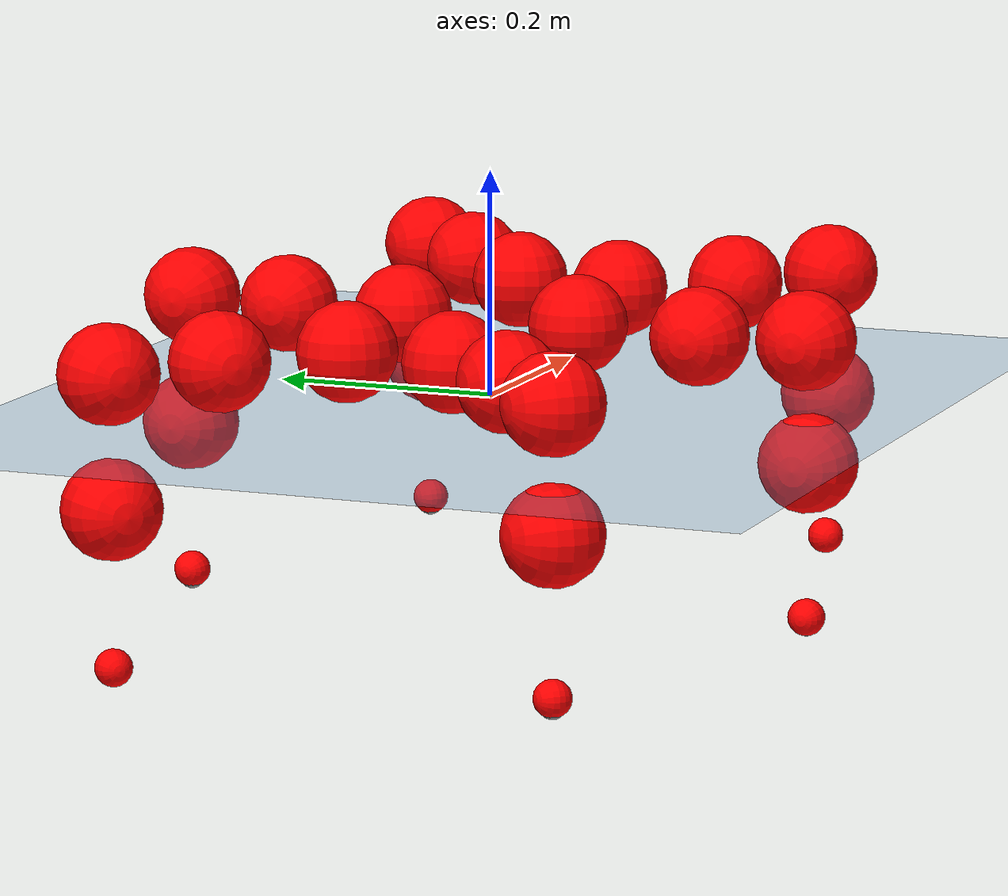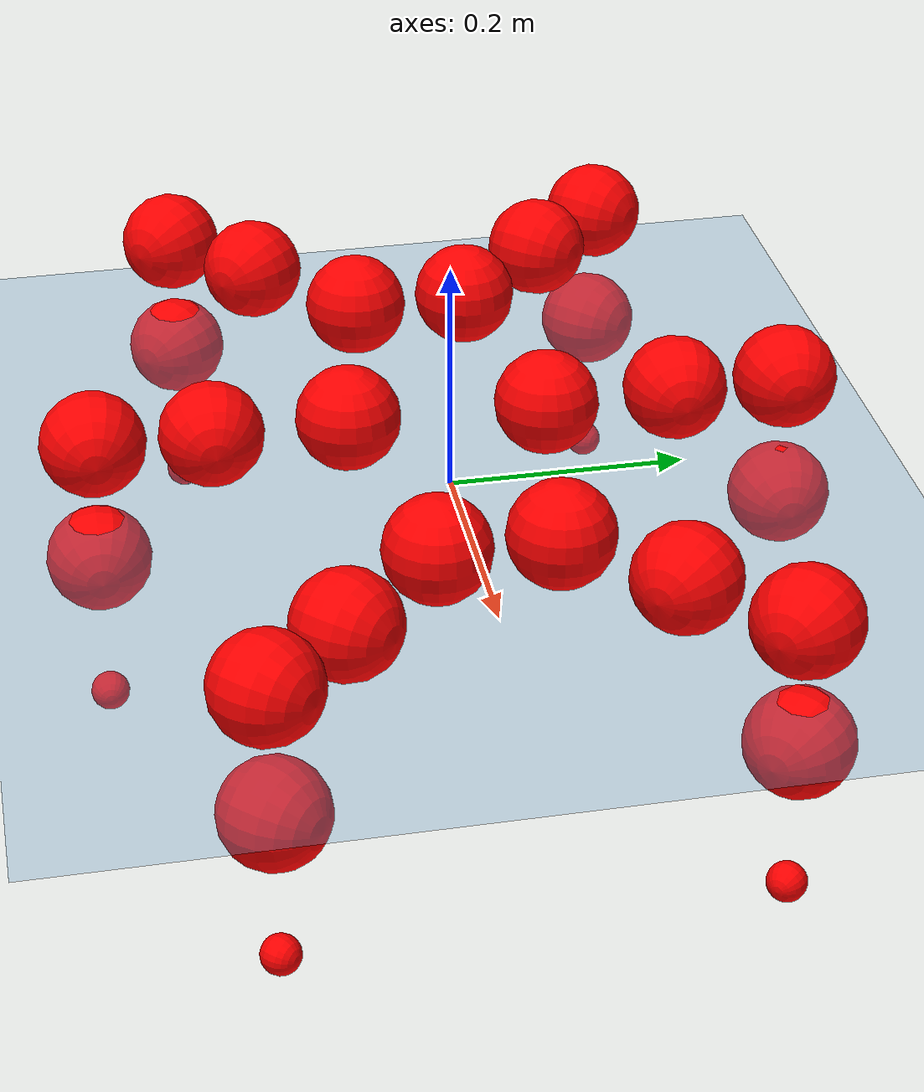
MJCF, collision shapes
<mujoco model="Golem">
  <compiler angle="radian" assetdir="assets" balanceinertia="true" inertiafromgeom="false"/>

  <option timestep="0.005" density="1.2" viscosity="2e-05"/>

  <size nkey="1"/>

  <visual>
    <quality shadowsize="8192"/>
    <map shadowclip="0.5"/>
  </visual>

  <default>
    <default class="/">
      <joint armature="0.01" damping="0.01" frictionloss="0.01"/>
      <geom contype="0" conaffinity="0" group="1" solref="-1000 -80"/>
      <site size="0.01 0.005 0.005" group="5"/>
      <general forcelimited="true" biastype="affine" gainprm="25" biasprm="0 -25 -0.5"/>
      <default class="visual">
        <geom type="mesh" group="2"/>
      </default>
      <default class="collision">
        <geom group="3"/>
      </default>
      <default class="foot">
        <geom size="0.01 0 0" condim="6" group="4" priority="1" solimp="0.015 1 0.01"/>
      </default>
      <default class="reward_collision_sphere">
        <geom group="5" rgba="1 0 0 1"/>
      </default>
    </default>
  </default>

  <asset>
    <texture type="skybox" colorspace="auto" name="//unnamed_texture_0" builtin="gradient" rgb1="0.95 0.95 0.95" rgb2="0.95 0.95 0.95" width="100" height="600"/>
    <texture type="2d" colorspace="auto" name="texplane" builtin="checker" rgb1="0.345 0.575 0.748" rgb2="0.345 0.575 0.748" markrgb="1 1 1" width="512" height="512"/>
    <material name="MatPlane" class="/" texture="texplane" texuniform="true" texrepeat="2 2" specular="0.9"/>
    <mesh name="body" class="/" file="body.stl" scale="0.001 0.001 0.001"/>
    <mesh name="coxa" class="/" file="coxa.stl" scale="0.001 0.001 0.001"/>
    <mesh name="femur" class="/" file="femur.stl" scale="0.001 0.001 0.001"/>
    <mesh name="tibia" class="/" file="tibia.stl" scale="0.001 0.001 0.001"/>
    <mesh name="tarsus" class="/" file="tarsus.stl" scale="0.001 0.001 0.001"/>
  </asset>

  <worldbody>
    <geom name="floor" class="/" size="100 100 0.125" type="plane" group="0" material="MatPlane"/>
    <light name="toplight_shadow" class="/" pos="0 0 5" dir="0.0990148 0.0990148 -0.990148" type="directional" ambient="0.04 0.04 0.04" diffuse="0.55 0.55 0.55" specular="0.12 0.12 0.12"/>
    <light name="toplight_fill" class="/" pos="0 0 5" dir="0.0990148 0.0990148 -0.990148" type="directional" castshadow="false" ambient="0.04 0.04 0.04" diffuse="0.3 0.3 0.3" specular="0.08 0.08 0.08"/>
    <body name="trunk" pos="-0.00222601 -0.000224331 -0.00129638" quat="1 7.61428e-05 1.54105e-05 0.000530578">
      <inertial pos="0.00143806 0.000266762 -0.00449404" quat="0.999907 -0.00360764 0.00993808 0.00858234" mass="4.76239" diaginertia="0.0330059 0.00627516 0.0156985"/>
      <joint name="//unnamed_joint_0" type="free"/>
      <geom name="//unnamed_geom_1" class="/" pos="0 0 0.0701916" quat="1 0 0 0" type="mesh" rgba="0.9 0.9 0.9 1" mesh="body"/>
      <site name="imu" class="/" pos="0.16976 0.000745203 0.104461" size="0.0109324"/>
      <camera name="track" class="/" pos="0 -1.82555 0" quat="0.707107 0.707107 0 0" mode="trackcom"/>
      <camera name="ego_camera" class="/" pos="0.165128 0 0.109674" quat="-0.5 -0.5 0.5 0.5"/>
      <body name="coxa_RR" pos="-0.226179 -0.0730883 0.0701341" quat="0.382582 -0.000126084 -0.000126853 -0.923922">
        <inertial pos="3.27775e-05 -1.5978e-05 -0.000334555" quat="0.99995 -0.00897167 0.00351884 0.00283327" mass="0.252839" diaginertia="0.03313 0.00610861 0.0154041"/>
        <joint name="coxa_joint_RR" class="/" pos="0 0 0" axis="0.00322537 -0.00267975 -0.999991" range="-3.15316 3.19385" armature="0.0103994" damping="0.00952388" frictionloss="0.0100444"/>
        <geom name="//unnamed_geom_2" class="/" type="mesh" rgba="0.2 0.2 0.2 1" mesh="coxa"/>
        <geom name="//unnamed_geom_3" class="reward_collision_sphere" size="0.0437298" pos="-0.0381064 0 0"/>
        <body name="femur_RR" pos="0.0754229 0.00190293 0.00288417" quat="0.500467 -0.499664 0.499881 0.499988">
          <inertial pos="-0.000461009 0.00270846 0.00248408" quat="0.999987 0.00141395 -1.98327e-05 0.00496739" mass="0.261212" diaginertia="0.0342606 0.00636121 0.0164981"/>
          <joint name="femur_joint_RR" class="/" pos="0 0 0" axis="0.000628829 0.00144733 -0.999999" range="-3.16157 3.13536" armature="0.0107918" damping="0.0175761" frictionloss="0.0122877"/>
          <geom name="//unnamed_geom_4" class="/" type="mesh" rgba="0.9 0.9 0.9 1" mesh="femur"/>
          <geom name="//unnamed_geom_5" class="reward_collision_sphere" size="0.0437298"/>
          <body name="tibia_RR" pos="0.000865218 -0.096773 -0.00229327" quat="-0.000173504 1 8.49709e-05 5.66409e-05">
            <inertial pos="0.00141013 -0.00203013 0.00089845" quat="0.999995 0.00033694 -3.23108e-05 0.00322255" mass="0.262827" diaginertia="0.0329003 0.00635593 0.0157895"/>
            <joint name="tibia_joint_RR" class="/" pos="0 0 0" axis="0.00175133 -0.000153965 0.999998" range="-3.13802 3.13557" armature="0.0104566" damping="0.020843" frictionloss="0.00985488"/>
            <geom name="//unnamed_geom_6" class="/" type="mesh" rgba="0.2 0.2 0.2 1" mesh="tibia"/>
            <geom name="//unnamed_geom_7" class="reward_collision_sphere" size="0.0437298"/>
            <body name="tarsus_RR" pos="0.108748 0.000282464 0.000198533" quat="1 0.000133997 -0.0002531 -0.000206599">
              <inertial pos="0.0746813 -0.0010276 0.000252474" quat="0.506532 0.496864 0.497224 0.49932" mass="0.269085" diaginertia="0.0341656 0.00638579 0.015637"/>
              <joint name="tarsus_joint_RR" class="/" pos="0 0 0" axis="-0.000613335 0.00155126 0.999999" range="-3.19048 3.18677" armature="0.0108183" damping="0.0072568" frictionloss="0.0112136"/>
              <geom name="//unnamed_geom_8" class="/" type="mesh" rgba="0.9 0.9 0.9 1" mesh="tarsus"/>
              <geom name="foot_1" class="foot" size="0.0118175" pos="0.142264 0 0" quat="0 -0.707107 0 0.707107"/>
              <geom name="//unnamed_geom_10" class="reward_collision_sphere" size="0.0437298"/>
              <geom name="//unnamed_geom_11" class="reward_collision_sphere" size="0.0163987" pos="0.136548 0 0"/>
              <site name="foot_1" class="foot" pos="0.142264 0 0" quat="0 -0.707107 0 0.707107" size="0.0109324"/>
            </body>
          </body>
        </body>
      </body>
      <body name="coxa_RM" pos="-0.00287103 -0.12217 0.071886" quat="0.707409 -5.70171e-05 -0.000200721 -0.706804">
        <inertial pos="-0.000278901 -0.00168064 0.000590672" quat="0.999914 -0.00570061 -0.0116875 -0.00165455" mass="0.266597" diaginertia="0.0338904 0.00632972 0.0162914"/>
        <joint name="coxa_joint_RM" class="/" pos="0 0 0" axis="0.000111268 0.000567652 -1" range="-3.11951 3.11789" armature="0.0109104" damping="0.00435709" frictionloss="0.0114283"/>
        <geom name="//unnamed_geom_12" class="/" type="mesh" rgba="0.2 0.2 0.2 1" mesh="coxa"/>
        <geom name="//unnamed_geom_13" class="reward_collision_sphere" size="0.0437298" pos="-0.0381064 0 0"/>
        <body name="femur_RM" pos="0.0746854 -0.00047499 -0.00306374" quat="0.500888 -0.500346 0.499703 0.499061">
          <inertial pos="-0.00272255 -0.00173131 -0.00248275" quat="0.999993 -0.00259827 0.00255047 -0.00113646" mass="0.270223" diaginertia="0.033432 0.00633063 0.0160522"/>
          <joint name="femur_joint_RM" class="/" pos="0 0 0" axis="-0.00757963 0.000219035 -0.999971" range="-3.15574 3.19412" armature="0.0111051" damping="0.0156594" frictionloss="0.00942199"/>
          <geom name="//unnamed_geom_14" class="/" type="mesh" rgba="0.9 0.9 0.9 1" mesh="femur"/>
          <geom name="//unnamed_geom_15" class="reward_collision_sphere" size="0.0437298"/>
          <body name="tibia_RM" pos="-0.00238627 -0.0963096 0.00229688" quat="-0.000307601 1 0.00014304 -0.000457101">
            <inertial pos="-0.000686014 -0.00102668 0.000484558" quat="1 -7.68135e-05 -0.000672528 -8.82817e-05" mass="0.261291" diaginertia="0.0341222 0.00649213 0.0157454"/>
            <joint name="tibia_joint_RM" class="/" pos="0 0 0" axis="0.00494158 -0.0121608 0.999914" range="-3.13556 3.08398" armature="0.0116116" damping="0" frictionloss="0.0113776"/>
            <geom name="//unnamed_geom_16" class="/" type="mesh" rgba="0.2 0.2 0.2 1" mesh="tibia"/>
            <geom name="//unnamed_geom_17" class="reward_collision_sphere" size="0.0437298"/>
            <body name="tarsus_RM" pos="0.108039 0.00196319 -0.00247174" quat="1 3.70717e-05 1.39239e-06 -0.000555132">
              <inertial pos="0.077122 0.000907523 0.00250383" quat="0.493323 0.509974 0.500358 0.496187" mass="0.261609" diaginertia="0.0338214 0.00632025 0.0153353"/>
              <joint name="tarsus_joint_RM" class="/" pos="0 0 0" axis="3.4498e-05 1.57102e-05 1" range="-3.19482 3.08527" armature="0.0110353" damping="0.00715494" frictionloss="0.0113663"/>
              <geom name="//unnamed_geom_18" class="/" type="mesh" rgba="0.9 0.9 0.9 1" mesh="tarsus"/>
              <geom name="foot_2" class="foot" size="0.0108916" pos="0.142264 0 0" quat="0 -0.707107 0 0.707107"/>
              <geom name="//unnamed_geom_20" class="reward_collision_sphere" size="0.0437298"/>
              <geom name="//unnamed_geom_21" class="reward_collision_sphere" size="0.0163987" pos="0.136548 0 0"/>
              <site name="foot_2" class="foot" pos="0.142264 0 0" quat="0 -0.707107 0 0.707107" size="0.0109324"/>
            </body>
          </body>
        </body>
      </body>
      <body name="coxa_RF" pos="0.225427 -0.0746805 0.06863" quat="0.924079 -0.000225152 0.000214041 -0.3822">
        <inertial pos="0.000406282 -0.00230246 -0.000754238" quat="0.999997 0.00175568 0.00164692 -0.000628199" mass="0.268943" diaginertia="0.0338358 0.00638264 0.0159911"/>
        <joint name="coxa_joint_RF" class="/" pos="0 0 0" axis="-0.00472833 -0.00166028 -0.999987" range="-3.13656 3.18403" armature="0.0113316" damping="0" frictionloss="0.0107898"/>
        <geom name="//unnamed_geom_22" class="/" type="mesh" rgba="0.2 0.2 0.2 1" mesh="coxa"/>
        <geom name="//unnamed_geom_23" class="reward_collision_sphere" size="0.0437298" pos="-0.0381064 0 0"/>
        <body name="femur_RF" pos="0.0777927 -0.00106132 -0.00287394" quat="0.500018 -0.499996 0.500022 0.499964">
          <inertial pos="-0.00104129 -6.68073e-05 0.00272018" quat="0.999995 -0.00105738 -0.00152123 -0.00254667" mass="0.257863" diaginertia="0.0332945 0.00624935 0.0161003"/>
          <joint name="femur_joint_RF" class="/" pos="0 0 0" axis="-0.00227325 0.000396363 -0.999997" stiffness="2.63971e-05" range="-3.08525 3.11976" armature="0.010669" damping="0.0120112" frictionloss="0.00958392"/>
          <geom name="//unnamed_geom_24" class="/" type="mesh" rgba="0.9 0.9 0.9 1" mesh="femur"/>
          <geom name="//unnamed_geom_25" class="reward_collision_sphere" size="0.0437298"/>
          <body name="tibia_RF" pos="-0.00349536 -0.0980553 0.000767434" quat="-0.000244152 1 -6.1091e-05 0.000202864">
            <inertial pos="0.00240988 -0.00101344 5.31535e-05" quat="0.999914 0.00953182 -0.00334644 -0.00832418" mass="0.264616" diaginertia="0.03235 0.00619074 0.0159626"/>
            <joint name="tibia_joint_RF" class="/" pos="0 0 0" axis="-0.00915269 0.00688921 0.999934" stiffness="0.000809009" range="-3.1374 3.14108" armature="0.0103984" damping="0.0075841" frictionloss="0.0111314"/>
            <geom name="//unnamed_geom_26" class="/" type="mesh" rgba="0.2 0.2 0.2 1" mesh="tibia"/>
            <geom name="//unnamed_geom_27" class="reward_collision_sphere" size="0.0437298"/>
            <body name="tarsus_RF" pos="0.113076 -0.00060807 -0.00207361" quat="1 0.000343866 -3.03467e-05 -0.000731814">
              <inertial pos="0.0772664 -0.00262216 0.000167924" quat="0.500782 0.500516 0.499136 0.499563" mass="0.253167" diaginertia="0.0330434 0.00613669 0.0161515"/>
              <joint name="tarsus_joint_RF" class="/" pos="0 0 0" axis="-0.011771 0.00983824 0.999882" range="-3.19092 3.13615" armature="0.0109246" damping="0.0189352" frictionloss="0.0111928"/>
              <geom name="//unnamed_geom_28" class="/" type="mesh" rgba="0.9 0.9 0.9 1" mesh="tarsus"/>
              <geom name="foot_3" class="foot" size="0.0104914" pos="0.142264 0 0" quat="0 -0.707107 0 0.707107"/>
              <geom name="//unnamed_geom_30" class="reward_collision_sphere" size="0.0437298"/>
              <geom name="//unnamed_geom_31" class="reward_collision_sphere" size="0.0163987" pos="0.136548 0 0"/>
              <site name="foot_3" class="foot" pos="0.142264 0 0" quat="0 -0.707107 0 0.707107" size="0.0109324"/>
            </body>
          </body>
        </body>
      </body>
      <body name="coxa_LR" pos="-0.224798 0.0783318 0.0718422" quat="0.382721 -0.000168307 0.000402433 0.923864">
        <inertial pos="0.00101365 0.000562275 0.00300749" quat="0.999996 -0.000944748 -0.000109091 0.00270104" mass="0.263114" diaginertia="0.0328923 0.00634861 0.0153174"/>
        <joint name="coxa_joint_LR" class="/" pos="0 0 0" axis="0.00284051 0.00148824 -0.999995" range="-3.15922 3.13494" armature="0.0106577" damping="0" frictionloss="0.00945574"/>
        <geom name="//unnamed_geom_32" class="/" type="mesh" rgba="0.2 0.2 0.2 1" mesh="coxa"/>
        <geom name="//unnamed_geom_33" class="reward_collision_sphere" size="0.0437298" pos="-0.0381064 0 0"/>
        <body name="femur_LR" pos="0.0759492 -0.00354515 -0.000405185" quat="0.499964 -0.500071 0.499735 0.500231">
          <inertial pos="0.00274768 -0.000918063 0.00230886" quat="1 -4.33731e-06 -4.51194e-05 -7.51489e-05" mass="0.251915" diaginertia="0.0329126 0.00626847 0.0159212"/>
          <joint name="femur_joint_LR" class="/" pos="0 0 0" axis="0.000121647 -0.000292454 1" range="-3.19091 3.08423" armature="0.00947011" damping="0" frictionloss="0.0112326"/>
          <geom name="//unnamed_geom_34" class="/" type="mesh" rgba="0.9 0.9 0.9 1" mesh="femur"/>
          <geom name="//unnamed_geom_35" class="reward_collision_sphere" size="0.0437298"/>
          <body name="tibia_LR" pos="0.0034729 -0.0989339 -0.00038912" quat="-5.79796e-05 1 -0.000588991 0.000191243">
            <inertial pos="0.0012095 -0.00257779 0.000646798" quat="0.999999 -0.000995436 -0.00100625 0.000322839" mass="0.268162" diaginertia="0.0324941 0.00651084 0.0153767"/>
            <joint name="tibia_joint_LR" class="/" pos="0 0 0" axis="0.00688898 -0.0124029 -0.999899" range="-3.16164 3.08445" armature="0.0109612" damping="0.00518518" frictionloss="0.0111086"/>
            <geom name="//unnamed_geom_36" class="/" type="mesh" rgba="0.2 0.2 0.2 1" mesh="tibia"/>
            <geom name="//unnamed_geom_37" class="reward_collision_sphere" size="0.0437298"/>
            <body name="tarsus_LR" pos="0.115366 -0.000665205 -0.00185048" quat="0.999999 0.00136499 -1.40112e-05 0.00029927">
              <inertial pos="0.0742908 -0.00235799 0.000493077" quat="0.500428 0.499394 0.50018 0.499998" mass="0.263446" diaginertia="0.0333982 0.00616836 0.016319"/>
              <joint name="tarsus_joint_LR" class="/" pos="0 0 0" axis="-0.000885368 0.00036466 -1" range="-3.1475 3.14339" armature="0.0112251" damping="0.0287191" frictionloss="0.0124424"/>
              <geom name="//unnamed_geom_38" class="/" type="mesh" rgba="0.9 0.9 0.9 1" mesh="tarsus"/>
              <geom name="foot_4" class="foot" size="0.0108384" pos="0.142264 0 0" quat="0.707107 0 -0.707107 0"/>
              <geom name="//unnamed_geom_40" class="reward_collision_sphere" size="0.0437298"/>
              <geom name="//unnamed_geom_41" class="reward_collision_sphere" size="0.0163987" pos="0.136548 0 0"/>
              <site name="foot_4" class="foot" pos="0.142264 0 0" quat="0.707107 0 -0.707107 0" size="0.0109324"/>
            </body>
          </body>
        </body>
      </body>
      <body name="coxa_LM" pos="-0.000683458 0.120084 0.070065" quat="0.706855 0.000190917 0.000574597 0.707358">
        <inertial pos="0.00300652 -0.00020847 0.00054729" quat="1 8.16925e-06 -2.44283e-05 5.5716e-05" mass="0.251833" diaginertia="0.0328825 0.00611436 0.0154682"/>
        <joint name="coxa_joint_LM" class="/" pos="0 0 0" axis="-0.000960974 -0.000774502 -0.999999" stiffness="0.000243159" range="-3.15618 3.14196" armature="0.011308" damping="0" frictionloss="0.00992427"/>
        <geom name="//unnamed_geom_42" class="/" type="mesh" rgba="0.2 0.2 0.2 1" mesh="coxa"/>
        <geom name="//unnamed_geom_43" class="reward_collision_sphere" size="0.0437298" pos="-0.0381064 0 0"/>
        <body name="femur_LM" pos="0.0719198 0.000165198 0.00165804" quat="0.500152 -0.500051 0.499858 0.499939">
          <inertial pos="0.00196924 -0.000645847 -0.00150046" quat="0.999999 0.00121852 1.47968e-05 -0.000743882" mass="0.268728" diaginertia="0.0329978 0.00654862 0.0168771"/>
          <joint name="femur_joint_LM" class="/" pos="0 0 0" axis="0.00910817 0.0115902 0.999891" range="-3.08578 3.1195" armature="0.0114805" damping="0.00501127" frictionloss="0.0109803"/>
          <geom name="//unnamed_geom_44" class="/" type="mesh" rgba="0.9 0.9 0.9 1" mesh="femur"/>
          <geom name="//unnamed_geom_45" class="reward_collision_sphere" size="0.0437298"/>
          <body name="tibia_LM" pos="-0.00093071 -0.0951544 -0.000695478" quat="-2.96717e-06 1 1.37612e-05 -5.24784e-07">
            <inertial pos="-0.00269642 0.000198463 0.000187424" quat="0.999999 -0.000760299 -0.000608115 0.000927156" mass="0.257469" diaginertia="0.0331514 0.00635024 0.0161714"/>
            <joint name="tibia_joint_LM" class="/" pos="0 0 0" axis="1.34498e-05 0.000154111 -1" stiffness="0.00934336" range="-3.15189 3.12133" armature="0.00967525" damping="0.00915586" frictionloss="0.00966604"/>
            <geom name="//unnamed_geom_46" class="/" type="mesh" rgba="0.2 0.2 0.2 1" mesh="tibia"/>
            <geom name="//unnamed_geom_47" class="reward_collision_sphere" size="0.0437298"/>
            <body name="tarsus_LM" pos="0.115214 0.00239515 -0.00050116" quat="1 -4.09532e-05 -1.50841e-05 4.13939e-06">
              <inertial pos="0.0738509 0.000703363 -0.00192241" quat="0.505194 0.507343 0.490142 0.497135" mass="0.258355" diaginertia="0.0320529 0.00633681 0.0154253"/>
              <joint name="tarsus_joint_LM" class="/" pos="0 0 0" axis="-0.00825503 0.00300381 -0.999961" stiffness="0.00244704" range="-3.0894 3.13832" armature="0.0107829" damping="0.017086" frictionloss="0.0106201"/>
              <geom name="//unnamed_geom_48" class="/" type="mesh" rgba="0.9 0.9 0.9 1" mesh="tarsus"/>
              <geom name="foot_5" class="foot" size="0.0119409" pos="0.142264 0 0" quat="0.707107 0 -0.707107 0"/>
              <geom name="//unnamed_geom_50" class="reward_collision_sphere" size="0.0437298"/>
              <geom name="//unnamed_geom_51" class="reward_collision_sphere" size="0.0163987" pos="0.136548 0 0"/>
              <site name="foot_5" class="foot" pos="0.142264 0 0" quat="0.707107 0 -0.707107 0" size="0.0109324"/>
            </body>
          </body>
        </body>
      </body>
      <body name="coxa_LF" pos="0.225175 0.0760794 0.0703815" quat="0.923823 -8.67493e-05 9.65478e-06 0.382819">
        <inertial pos="0.000302353 -0.00241681 4.61481e-05" quat="0.999905 0.00352053 0.00925895 -0.00962502" mass="0.267392" diaginertia="0.0339045 0.00660901 0.016568"/>
        <joint name="coxa_joint_LF" class="/" pos="0 0 0" axis="0.00373436 -0.00290932 -0.999989" range="-3.09043 3.14321" armature="0.0116827" damping="0.0151009" frictionloss="0.00945628"/>
        <geom name="//unnamed_geom_52" class="/" type="mesh" rgba="0.2 0.2 0.2 1" mesh="coxa"/>
        <geom name="//unnamed_geom_53" class="reward_collision_sphere" size="0.0437298" pos="-0.0381064 0 0"/>
        <body name="femur_LF" pos="0.0724517 -0.00118185 0.00195806" quat="0.499676 -0.499877 0.500279 0.500167">
          <inertial pos="0.000454258 0.0019187 -0.00272987" quat="0.999991 -0.00365614 -0.000152586 -0.0022568" mass="0.266256" diaginertia="0.0337661 0.00649918 0.0156965"/>
          <joint name="femur_joint_LF" class="/" pos="0 0 0" axis="-0.00132075 -0.00054903 0.999999" range="-3.12066 3.13571" armature="0.0120828" damping="0" frictionloss="0.0110529"/>
          <geom name="//unnamed_geom_54" class="/" type="mesh" rgba="0.9 0.9 0.9 1" mesh="femur"/>
          <geom name="//unnamed_geom_55" class="reward_collision_sphere" size="0.0437298"/>
          <body name="tibia_LF" pos="0.00029306 -0.100405 0.000989906" quat="0.000108866 1 -0.000154763 4.33497e-05">
            <inertial pos="0.00264828 0.00280113 0.00239848" quat="1 -0.000698908 -0.000230654 0.000213639" mass="0.263221" diaginertia="0.0331916 0.00653423 0.016459"/>
            <joint name="tibia_joint_LF" class="/" pos="0 0 0" axis="-0.00109418 0.00111339 -0.999999" stiffness="0.00683784" range="-3.09497 3.08457" armature="0.01149" damping="0.00512497" frictionloss="0.00982435"/>
            <geom name="//unnamed_geom_56" class="/" type="mesh" rgba="0.2 0.2 0.2 1" mesh="tibia"/>
            <geom name="//unnamed_geom_57" class="reward_collision_sphere" size="0.0437298"/>
            <body name="tarsus_LF" pos="0.110156 0.00191818 -0.000602494" quat="1 -9.474e-05 -1.01199e-05 -3.73062e-05">
              <inertial pos="0.0745263 0.000902276 0.0026451" quat="0.499529 0.489232 0.504116 0.506942" mass="0.26361" diaginertia="0.0344052 0.00635282 0.0164503"/>
              <joint name="tarsus_joint_LF" class="/" pos="0 0 0" axis="0.00320539 -6.95812e-05 -0.999995" stiffness="0.00593242" range="-3.19418 3.08499" armature="0.0118562" damping="0.0129107" frictionloss="0.0117994"/>
              <geom name="//unnamed_geom_58" class="/" type="mesh" rgba="0.9 0.9 0.9 1" mesh="tarsus"/>
              <geom name="foot_6" class="foot" size="0.0116664" pos="0.142264 0 0" quat="0.707107 0 -0.707107 0"/>
              <geom name="//unnamed_geom_60" class="reward_collision_sphere" size="0.0437298"/>
              <geom name="//unnamed_geom_61" class="reward_collision_sphere" size="0.0163987" pos="0.136548 0 0"/>
              <site name="foot_6" class="foot" pos="0.142264 0 0" quat="0.707107 0 -0.707107 0" size="0.0109324"/>
            </body>
          </body>
        </body>
      </body>
    </body>
  </worldbody>

  <contact>
    <pair class="/" geom1="floor" geom2="foot_1" name="//unnamed_contact_0"/>
    <pair class="/" geom1="floor" geom2="foot_2" name="//unnamed_contact_1"/>
    <pair class="/" geom1="floor" geom2="foot_3" name="//unnamed_contact_2"/>
    <pair class="/" geom1="floor" geom2="foot_4" name="//unnamed_contact_3"/>
    <pair class="/" geom1="floor" geom2="foot_5" name="//unnamed_contact_4"/>
    <pair class="/" geom1="floor" geom2="foot_6" name="//unnamed_contact_5"/>
  </contact>

  <actuator>
    <general name="coxa_joint_RR" class="/" joint="coxa_joint_RR" forcerange="-8.2627 8.2627" gainprm="27.9811" biasprm="0 -27.9811 -0.582602"/>
    <general name="femur_joint_RR" class="/" joint="femur_joint_RR" forcerange="-8.11962 8.11962" gainprm="27.9811" biasprm="0 -27.9811 -0.582602"/>
    <general name="tibia_joint_RR" class="/" joint="tibia_joint_RR" forcerange="-7.98907 7.98907" gainprm="27.9811" biasprm="0 -27.9811 -0.582602"/>
    <general name="tarsus_joint_RR" class="/" joint="tarsus_joint_RR" forcerange="-7.85006 7.85006" gainprm="27.9811" biasprm="0 -27.9811 -0.582602"/>
    <general name="coxa_joint_RM" class="/" joint="coxa_joint_RM" forcerange="-8.08946 8.08946" gainprm="27.9811" biasprm="0 -27.9811 -0.582602"/>
    <general name="femur_joint_RM" class="/" joint="femur_joint_RM" forcerange="-8.1227 8.1227" gainprm="27.9811" biasprm="0 -27.9811 -0.582602"/>
    <general name="tibia_joint_RM" class="/" joint="tibia_joint_RM" forcerange="-7.99934 7.99934" gainprm="27.9811" biasprm="0 -27.9811 -0.582602"/>
    <general name="tarsus_joint_RM" class="/" joint="tarsus_joint_RM" forcerange="-7.22728 7.22728" gainprm="27.9811" biasprm="0 -27.9811 -0.582602"/>
    <general name="coxa_joint_RF" class="/" joint="coxa_joint_RF" forcerange="-8.05078 8.05078" gainprm="27.9811" biasprm="0 -27.9811 -0.582602"/>
    <general name="femur_joint_RF" class="/" joint="femur_joint_RF" forcerange="-7.97366 7.97366" gainprm="27.9811" biasprm="0 -27.9811 -0.582602"/>
    <general name="tibia_joint_RF" class="/" joint="tibia_joint_RF" forcerange="-8.04555 8.04555" gainprm="27.9811" biasprm="0 -27.9811 -0.582602"/>
    <general name="tarsus_joint_RF" class="/" joint="tarsus_joint_RF" forcerange="-8.22113 8.22113" gainprm="27.9811" biasprm="0 -27.9811 -0.582602"/>
    <general name="coxa_joint_LR" class="/" joint="coxa_joint_LR" forcerange="-8.0003 8.0003" gainprm="27.9811" biasprm="0 -27.9811 -0.582602"/>
    <general name="femur_joint_LR" class="/" joint="femur_joint_LR" forcerange="-7.16223 7.16223" gainprm="27.9811" biasprm="0 -27.9811 -0.582602"/>
    <general name="tibia_joint_LR" class="/" joint="tibia_joint_LR" forcerange="-7.66531 7.66531" gainprm="27.9811" biasprm="0 -27.9811 -0.582602"/>
    <general name="tarsus_joint_LR" class="/" joint="tarsus_joint_LR" forcerange="-7.98772 7.98772" gainprm="27.9811" biasprm="0 -27.9811 -0.582602"/>
    <general name="coxa_joint_LM" class="/" joint="coxa_joint_LM" forcerange="-7.81865 7.81865" gainprm="27.9811" biasprm="0 -27.9811 -0.582602"/>
    <general name="femur_joint_LM" class="/" joint="femur_joint_LM" forcerange="-7.66892 7.66892" gainprm="27.9811" biasprm="0 -27.9811 -0.582602"/>
    <general name="tibia_joint_LM" class="/" joint="tibia_joint_LM" forcerange="-7.96739 7.96739" gainprm="27.9811" biasprm="0 -27.9811 -0.582602"/>
    <general name="tarsus_joint_LM" class="/" joint="tarsus_joint_LM" forcerange="-8.48879 8.48879" gainprm="27.9811" biasprm="0 -27.9811 -0.582602"/>
    <general name="coxa_joint_LF" class="/" joint="coxa_joint_LF" forcerange="-8.09142 8.09142" gainprm="27.9811" biasprm="0 -27.9811 -0.582602"/>
    <general name="femur_joint_LF" class="/" joint="femur_joint_LF" forcerange="-8.70409 8.70409" gainprm="27.9811" biasprm="0 -27.9811 -0.582602"/>
    <general name="tibia_joint_LF" class="/" joint="tibia_joint_LF" forcerange="-8.0269 8.0269" gainprm="27.9811" biasprm="0 -27.9811 -0.582602"/>
    <general name="tarsus_joint_LF" class="/" joint="tarsus_joint_LF" forcerange="-7.27601 7.27601" gainprm="27.9811" biasprm="0 -27.9811 -0.582602"/>
  </actuator>

  <sensor>
    <gyro site="imu" name="imu_angular_velocity"/>
    <velocimeter site="imu" name="imu_linear_velocity"/>
    <framelinvel objtype="site" objname="foot_1" name="foot_1_global_linear_velocity"/>
    <framelinvel objtype="site" objname="foot_2" name="foot_2_global_linear_velocity"/>
    <framelinvel objtype="site" objname="foot_3" name="foot_3_global_linear_velocity"/>
    <framelinvel objtype="site" objname="foot_4" name="foot_4_global_linear_velocity"/>
    <framelinvel objtype="site" objname="foot_5" name="foot_5_global_linear_velocity"/>
    <framelinvel objtype="site" objname="foot_6" name="foot_6_global_linear_velocity"/>
  </sensor>

  <keyframe>
    <key name="home" qpos="0 0 0.1457 1 0 0 0 0 0 0 0 0 0 0 0 0 0 0 0 0 0 0 0 0 0 0 0 0 0 0 0"/>
  </keyframe>
</mujoco>
